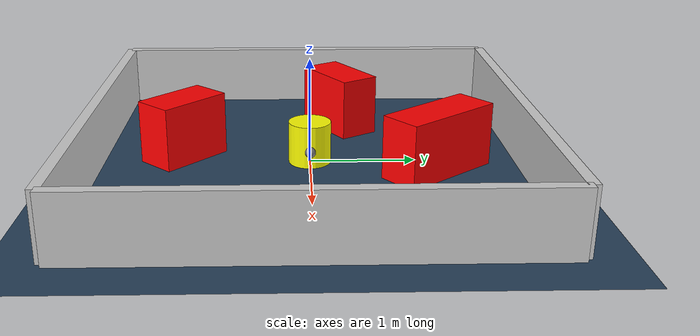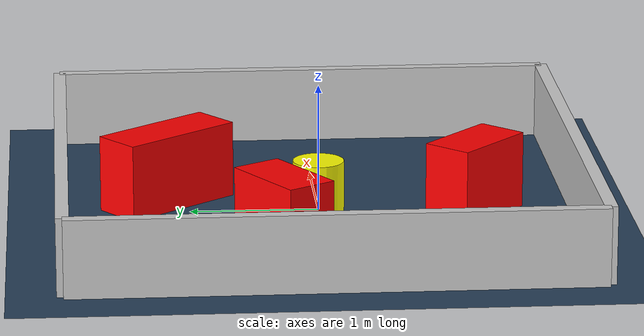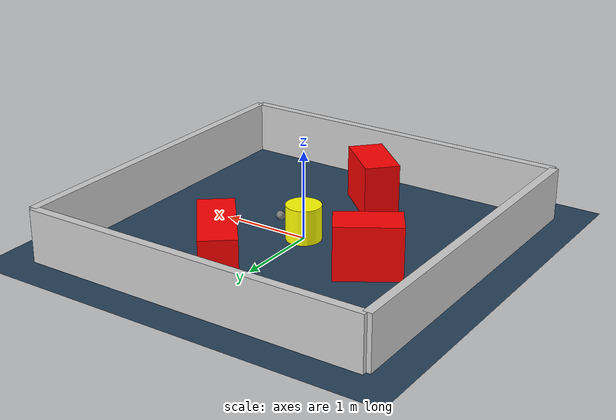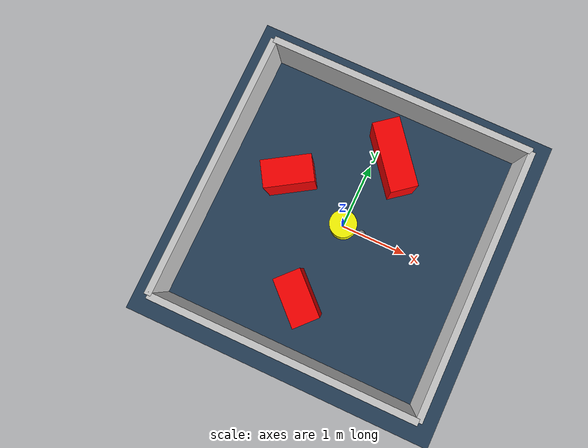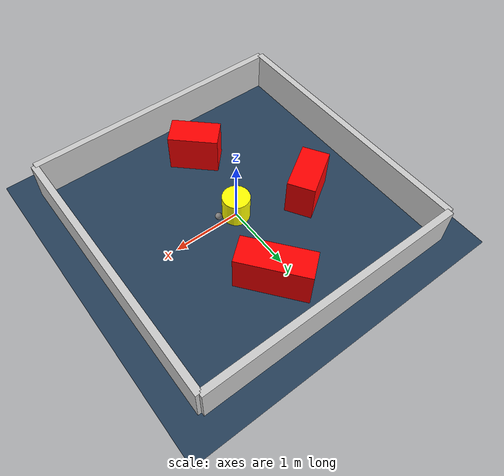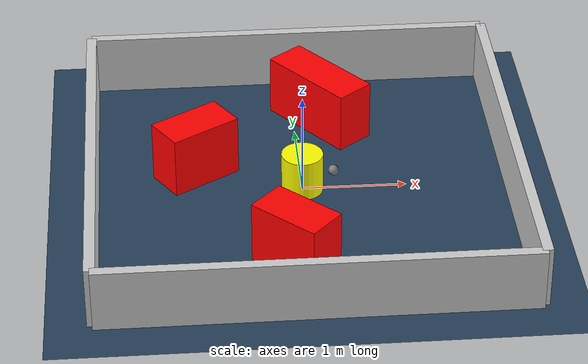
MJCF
<?xml version="1.0" ?>
<mujoco model="generated_environment">
  <option timestep="0.01" integrator="RK4" cone="elliptic"/>
  <default>
    <geom density="1"/>
  </default>
  <asset>
    <texture builtin="gradient" height="3072" rgb1="0.3 0.5 0.7" rgb2="0 0 0" type="skybox" width="512"/>
    <texture builtin="checker" height="300" mark="edge" markrgb="0.8 0.8 0.8" name="groundplane" rgb1="0.2 0.3 0.4" rgb2="0.1 0.2 0.3" type="2d" width="300"/>
    <material name="groundplane" reflectance="0.2" texrepeat="5 5" texture="groundplane" texuniform="true"/>
    <material name="robot" rgba="0.0 1.0 0.0 1"/>
  </asset>
  <worldbody>
    <light dir="0 0 -1" directional="true" pos="0 0 1.5"/>
    <geom condim="4" friction="1.0 0.005 0.001" material="groundplane" name="floor" size="0 0 0.05" type="plane"/>
    <body name="walls">
      <geom name="wall_1" condim="4" pos="-2.0 0.0 0.3" rgba="0.800000011920929 0.800000011920929 0.800000011920929 1.0" size="0.05 2.0 0.3" type="box"/>
      <geom name="wall_2" condim="4" pos="2.0 0.0 0.3" rgba="0.800000011920929 0.800000011920929 0.800000011920929 1.0" size="0.05 2.0 0.3" type="box"/>
      <geom name="wall_3" condim="4" pos="0.0 -2.0 0.3" rgba="0.800000011920929 0.800000011920929 0.800000011920929 1.0" size="2.0 0.05 0.3" type="box"/>
      <geom name="wall_4" condim="4" pos="0.0 2.0 0.3" rgba="0.800000011920929 0.800000011920929 0.800000011920929 1.0" size="2.0 0.05 0.3" type="box"/>
    </body>
    <body name="robot">
      <joint name="joint_x" type="slide" pos="0 0 0" axis="1 0 0"/>
      <joint name="joint_y" type="slide" pos="0 0 0" axis="0 1 0"/>
      <geom name="robot" type="sphere" pos="0.3 0.0 0.2" size="0.05" mass="5." friction="1.0 0.005 0.0001" condim="4" rgba="0.5 0.5 0.5 1.0"/>
      <site name="sensor_ball"/>
    </body>
    <body name="obstacle_movable_1">
      <geom name="obstacle_movable_1" condim="4" pos="0.0 0.0 0.2" euler="0 0 0.0" friction="1.0 0.005 0.001" rgba="1.0 1.0 0.0 1.0" size="0.2 0.2 0.0" type="cylinder" mass="0.1"/>
      <joint type="free"/>
    </body>
    <body name="obstacle_2_static">
      <geom name="obstacle_2_static" condim="4" pos="-0.14834190978030204 -1.207505088376712 0.3" euler="0 0 316.8056845919767" friction="1.0 0.005 0.001" rgba="1 0 0 1" size="0.36146623586196625 0.2 0.3" type="box"/>
    </body>
    <body name="obstacle_3_static">
      <geom name="obstacle_3_static" condim="4" pos="0.26525742085589865 1.1714746841823793 0.3" euler="0 0 128.61057927701037" friction="1.0 0.005 0.001" rgba="1 0 0 1" size="0.5131636303422912 0.2 0.3" type="box"/>
    </body>
    <body name="obstacle_4_static">
      <geom name="obstacle_4_static" condim="4" pos="-1.007001343030618 0.33305947994045915 0.3" euler="0 0 212.0768257772606" friction="1.0 0.005 0.001" rgba="1 0 0 1" size="0.36277220945473215 0.2 0.3" type="box"/>
    </body>
  </worldbody>
  <actuator>
    <motor name="actuator_x" joint="joint_x" gear="1" ctrlrange="-1 1"/>
    <motor name="actuator_y" joint="joint_y" gear="1" ctrlrange="-1 1"/>
  </actuator>
</mujoco>
